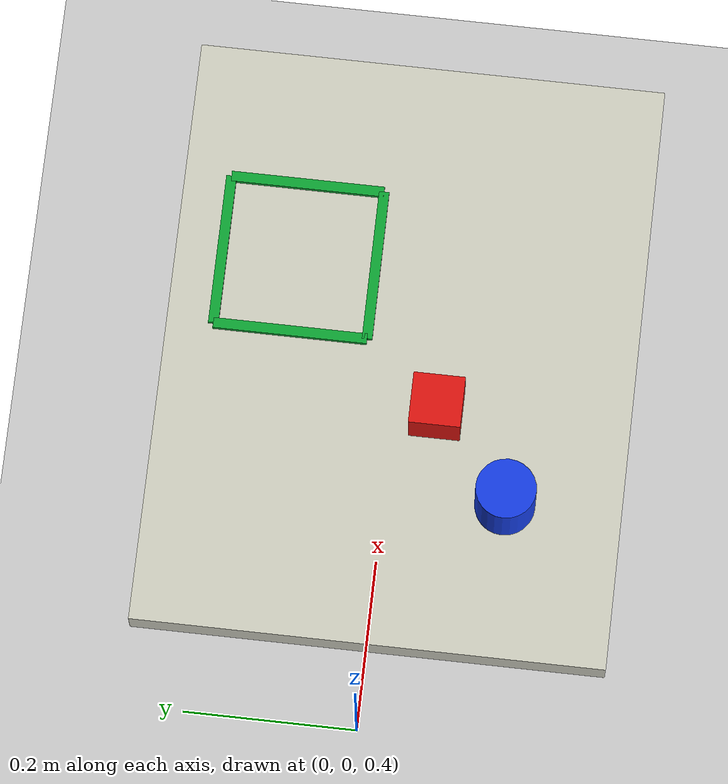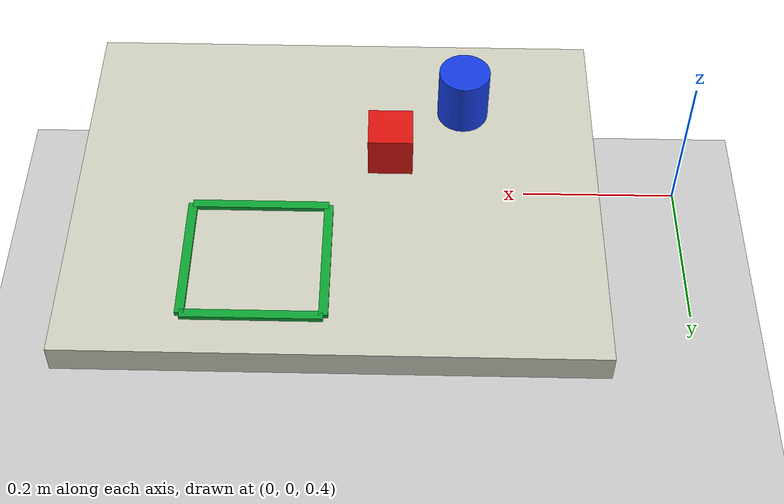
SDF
<?xml version="1.0" ?>
<sdf version="1.6">
  <world name="planar_push">
    <physics name="default_physics" default="0" type="ode">
      <gravity>0 0 -9.8066</gravity>
      <ode>
        <solver>
          <iters>60</iters>
          <sor>1.3</sor>
        </solver>
        <constraints>
          <cfm>0</cfm>
          <erp>0.2</erp>
        </constraints>
      </ode>
      <max_step_size>0.005</max_step_size>
      <real_time_factor>1.0</real_time_factor>
    </physics>

    <scene>
      <ambient>0.58 0.58 0.58</ambient>
      <background>0.72 0.76 0.80</background>
    </scene>

    <include>
      <uri>model://ground plane</uri>
    </include>

    <include>
      <uri>model://sun</uri>
    </include>

    <model name="push_table">
      <static>true</static>
      <pose>0.45 0 0.39 0 0 0</pose>
      <link name="table_link">
        <collision name="table_collision">
          <geometry>
            <box>
              <size>0.70 0.55 0.04</size>
            </box>
          </geometry>
          <surface>
            <friction>
              <ode>
                <mu>0.9</mu>
                <mu2>0.9</mu2>
              </ode>
            </friction>
          </surface>
        </collision>
        <visual name="table_visual">
          <geometry>
            <box>
              <size>0.70 0.55 0.04</size>
            </box>
          </geometry>
          <material>
            <ambient>0.82 0.82 0.76 1</ambient>
            <diffuse>0.82 0.82 0.76 1</diffuse>
          </material>
        </visual>
      </link>
    </model>

    <model name="target_square">
      <static>true</static>
      <pose>0.55 0.13 0.414 0 0 0</pose>
      <link name="target_link">
        <visual name="front_edge">
          <pose>0 0.09 0 0 0 0</pose>
          <geometry>
            <box>
              <size>0.18 0.012 0.006</size>
            </box>
          </geometry>
          <material>
            <ambient>0.05 0.65 0.20 1</ambient>
            <diffuse>0.05 0.65 0.20 1</diffuse>
          </material>
        </visual>
        <visual name="back_edge">
          <pose>0 -0.09 0 0 0 0</pose>
          <geometry>
            <box>
              <size>0.18 0.012 0.006</size>
            </box>
          </geometry>
          <material>
            <ambient>0.05 0.65 0.20 1</ambient>
            <diffuse>0.05 0.65 0.20 1</diffuse>
          </material>
        </visual>
        <visual name="left_edge">
          <pose>-0.09 0 0 0 0 0</pose>
          <geometry>
            <box>
              <size>0.012 0.18 0.006</size>
            </box>
          </geometry>
          <material>
            <ambient>0.05 0.65 0.20 1</ambient>
            <diffuse>0.05 0.65 0.20 1</diffuse>
          </material>
        </visual>
        <visual name="right_edge">
          <pose>0.09 0 0 0 0 0</pose>
          <geometry>
            <box>
              <size>0.012 0.18 0.006</size>
            </box>
          </geometry>
          <material>
            <ambient>0.05 0.65 0.20 1</ambient>
            <diffuse>0.05 0.65 0.20 1</diffuse>
          </material>
        </visual>
      </link>
    </model>

    <model name="red_block">
      <static>false</static>
      <pose>0.38 -0.05 0.445 0 0 0</pose>
      <link name="block_link">
        <inertial>
          <mass>0.16</mass>
          <inertia>
            <ixx>0.00009</ixx>
            <iyy>0.00009</iyy>
            <izz>0.00009</izz>
            <ixy>0</ixy>
            <ixz>0</ixz>
            <iyz>0</iyz>
          </inertia>
        </inertial>
        <collision name="block_collision">
          <geometry>
            <box>
              <size>0.06 0.06 0.06</size>
            </box>
          </geometry>
          <surface>
            <friction>
              <ode>
                <mu>0.45</mu>
                <mu2>0.45</mu2>
              </ode>
            </friction>
          </surface>
        </collision>
        <visual name="block_visual">
          <geometry>
            <box>
              <size>0.06 0.06 0.06</size>
            </box>
          </geometry>
          <material>
            <ambient>0.88 0.08 0.06 1</ambient>
            <diffuse>0.88 0.08 0.06 1</diffuse>
          </material>
        </visual>
      </link>
    </model>

    <model name="planar_pusher">
      <static>false</static>
      <pose>0.28 -0.14 0.45 0 0 0</pose>
      <link name="pusher_link">
        <inertial>
          <mass>1.0</mass>
          <inertia>
            <ixx>0.0008</ixx>
            <iyy>0.0008</iyy>
            <izz>0.0008</izz>
            <ixy>0</ixy>
            <ixz>0</ixz>
            <iyz>0</iyz>
          </inertia>
        </inertial>
        <collision name="pusher_collision">
          <geometry>
            <cylinder>
              <radius>0.035</radius>
              <length>0.08</length>
            </cylinder>
          </geometry>
          <surface>
            <friction>
              <ode>
                <mu>0.8</mu>
                <mu2>0.8</mu2>
              </ode>
            </friction>
          </surface>
        </collision>
        <visual name="pusher_visual">
          <geometry>
            <cylinder>
              <radius>0.035</radius>
              <length>0.08</length>
            </cylinder>
          </geometry>
          <material>
            <ambient>0.08 0.24 0.90 1</ambient>
            <diffuse>0.08 0.24 0.90 1</diffuse>
          </material>
        </visual>
      </link>
      <plugin filename="ignition-gazebo-velocity-control-system"
              name="ignition::gazebo::systems::VelocityControl">
        <topic>/pusher/cmd_vel</topic>
      </plugin>
    </model>
  </world>
</sdf>
